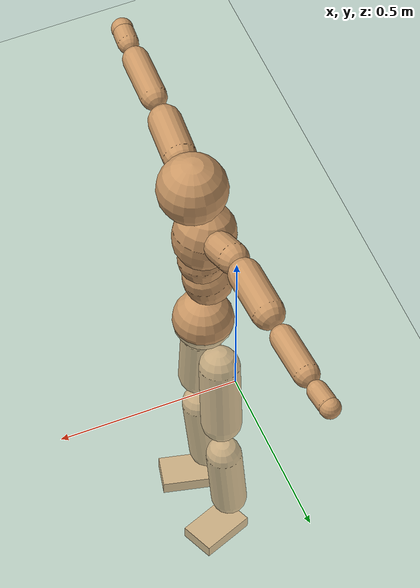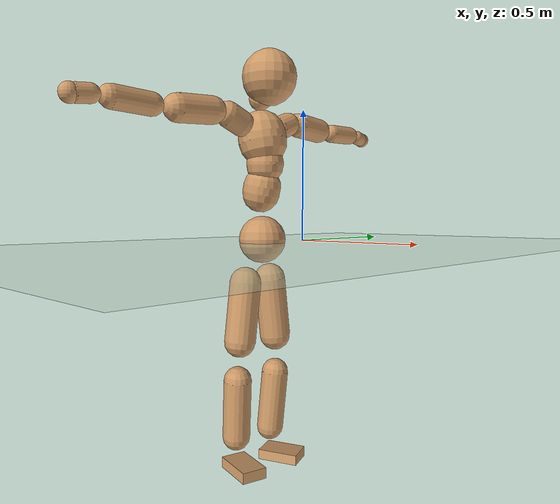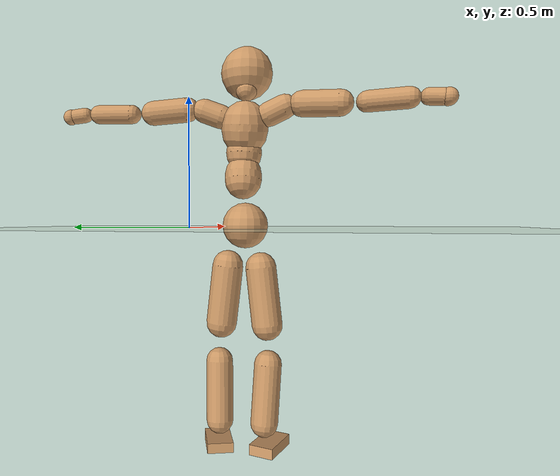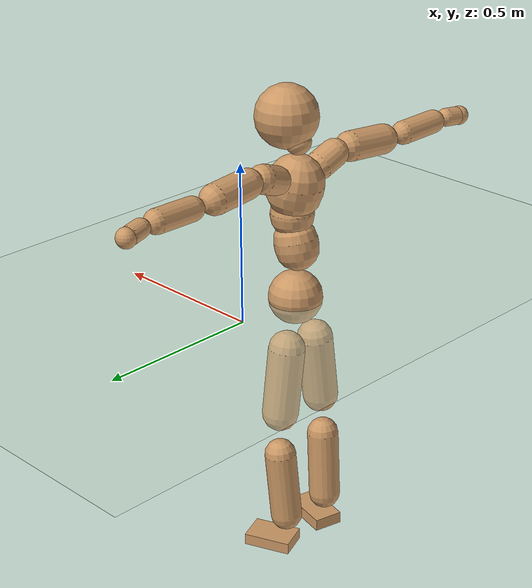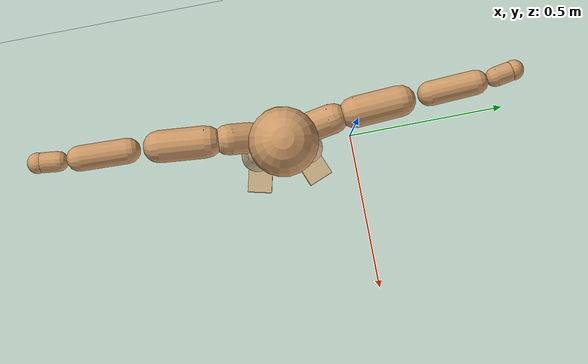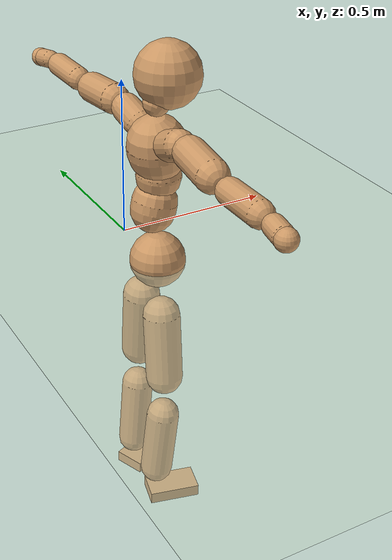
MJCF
<mujoco model="humanoid">
  <compiler coordinate="local" angle="radian"/>
  <default>
    <joint damping="0.0" armature="0.01" stiffness="0.0" limited="true"/>
    <geom conaffinity="1" condim="3" contype="7" margin="0.001" rgba="0.8 0.6 .4 1"/>
  </default>
  <asset>
    <texture type="skybox" builtin="gradient" rgb1=".4 .5 .6" rgb2="0 0 0" width="100" height="100"/>
    <texture builtin="flat" height="1278" mark="cross" markrgb="1 1 1" name="texgeom" random="0.01" rgb1="0.8 0.6 0.4" rgb2="0.8 0.6 0.4" type="cube" width="127"/>
    <texture builtin="checker" height="100" name="texplane" rgb1="0 0 0" rgb2="0.8 0.8 0.8" type="2d" width="100"/>
    <material name="MatPlane" reflectance="0.5" shininess="1" specular="1" texrepeat="60 60" texture="texplane"/>
    <material name="geom" texture="texgeom" texuniform="true"/>
  </asset>
  <worldbody>
    <light cutoff="100" diffuse="1 1 1" dir="-0 0 -1.3" directional="true" exponent="1" pos="0 0 1.3" specular=".1 .1 .1"/>
    <geom conaffinity="1" condim="3" name="floor" pos="0 0 0" rgba="0.8 0.9 0.8 1" size="100 100 .2" type="plane" material="MatPlane"/>
    <body name="Pelvis" pos="-0.0006 -0.2227 0.0106">
      <freejoint name="Pelvis"/>
      <geom type="sphere" contype="1" conaffinity="1" density="500" size="0.0851" pos="0.0000 0.0000 0.0000" name="Pelvis"/>
      <body name="L_Hip" pos="-0.0241 0.0533 -0.077">
        <joint name="L_Hip_x" type="hinge" pos="0 0 0" axis="1 0 0" stiffness="800" damping="80" armature="0.02" range="-180.0000 180.0000"/>
        <joint name="L_Hip_y" type="hinge" pos="0 0 0" axis="0 1 0" stiffness="800" damping="80" armature="0.02" range="-180.0000 180.0000"/>
        <joint name="L_Hip_z" type="hinge" pos="0 0 0" axis="0 0 1" stiffness="800" damping="80" armature="0.02" range="-180.0000 180.0000"/>
        <geom type="capsule" contype="1" conaffinity="1" density="500" fromto="0.0012 0.0085 -0.0726 0.0048 0.0341 -0.2905" size="0.0575" name="L_Hip"/>
        <body name="L_Knee" pos="0.006 0.0427 -0.3631">
          <joint name="L_Knee_x" type="hinge" pos="0 0 0" axis="1 0 0" stiffness="800" damping="80" armature="0.02" range="-180.0000 180.0000"/>
          <joint name="L_Knee_y" type="hinge" pos="0 0 0" axis="0 1 0" stiffness="800" damping="80" armature="0.02" range="-180.0000 180.0000"/>
          <joint name="L_Knee_z" type="hinge" pos="0 0 0" axis="0 0 1" stiffness="800" damping="80" armature="0.02" range="-180.0000 180.0000"/>
          <geom type="capsule" contype="1" conaffinity="1" density="500" fromto="-0.0067 -0.0022 -0.0739 -0.0269 -0.0088 -0.2958" size="0.0502" name="L_Knee"/>
          <body name="L_Ankle" pos="-0.0337 -0.011 -0.3697">
            <joint name="L_Ankle_x" type="hinge" pos="0 0 0" axis="1 0 0" stiffness="800" damping="80" armature="0.02" range="-180.0000 180.0000"/>
            <joint name="L_Ankle_y" type="hinge" pos="0 0 0" axis="0 1 0" stiffness="800" damping="80" armature="0.02" range="-180.0000 180.0000"/>
            <joint name="L_Ankle_z" type="hinge" pos="0 0 0" axis="0 0 1" stiffness="800" damping="80" armature="0.02" range="-180.0000 180.0000"/>
            <geom type="box" contype="1" conaffinity="1" density="500" pos="0.0533 0.0211 -0.0268" size="0.0761 0.049 0.0187" quat="0.9824 0.0000 0.0000 0.1869" name="L_Ankle"/>
            <body name="L_Toe" pos="0.1066 0.0421 -0.0536">
              <joint name="L_Toe_x" type="hinge" pos="0 0 0" axis="1 0 0" stiffness="500" damping="50" armature="0.02" range="-180.0000 180.0000"/>
              <joint name="L_Toe_y" type="hinge" pos="0 0 0" axis="0 1 0" stiffness="500" damping="50" armature="0.02" range="-180.0000 180.0000"/>
              <joint name="L_Toe_z" type="hinge" pos="0 0 0" axis="0 0 1" stiffness="500" damping="50" armature="0.02" range="-180.0000 180.0000"/>
              <geom type="box" contype="1" conaffinity="1" density="500" pos="0.0000 0.0000 0.0272" size="0.001 0.0023 0.001" quat="0.9815 0.0000 0.0000 0.1917" name="L_Toe"/>
            </body>
          </body>
        </body>
      </body>
      <body name="R_Hip" pos="-0.0207 -0.0561 -0.0843">
        <joint name="R_Hip_x" type="hinge" pos="0 0 0" axis="1 0 0" stiffness="800" damping="80" armature="0.02" range="-180.0000 180.0000"/>
        <joint name="R_Hip_y" type="hinge" pos="0 0 0" axis="0 1 0" stiffness="800" damping="80" armature="0.02" range="-180.0000 180.0000"/>
        <joint name="R_Hip_z" type="hinge" pos="0 0 0" axis="0 0 1" stiffness="800" damping="80" armature="0.02" range="-180.0000 180.0000"/>
        <geom type="capsule" contype="1" conaffinity="1" density="500" fromto="-0.0010 -0.0083 -0.0711 -0.0042 -0.0333 -0.2844" size="0.0569" name="R_Hip"/>
        <body name="R_Knee" pos="-0.0052 -0.0416 -0.3555">
          <joint name="R_Knee_x" type="hinge" pos="0 0 0" axis="1 0 0" stiffness="800" damping="80" armature="0.02" range="-180.0000 180.0000"/>
          <joint name="R_Knee_y" type="hinge" pos="0 0 0" axis="0 1 0" stiffness="800" damping="80" armature="0.02" range="-180.0000 180.0000"/>
          <joint name="R_Knee_z" type="hinge" pos="0 0 0" axis="0 0 1" stiffness="800" damping="80" armature="0.02" range="-180.0000 180.0000"/>
          <geom type="capsule" contype="1" conaffinity="1" density="500" fromto="-0.0063 0.0031 -0.0726 -0.0253 0.0125 -0.2904" size="0.0509" name="R_Knee"/>
          <body name="R_Ankle" pos="-0.0316 0.0156 -0.3629">
            <joint name="R_Ankle_x" type="hinge" pos="0 0 0" axis="1 0 0" stiffness="800" damping="80" armature="0.02" range="-180.0000 180.0000"/>
            <joint name="R_Ankle_y" type="hinge" pos="0 0 0" axis="0 1 0" stiffness="800" damping="80" armature="0.02" range="-180.0000 180.0000"/>
            <joint name="R_Ankle_z" type="hinge" pos="0 0 0" axis="0 0 1" stiffness="800" damping="80" armature="0.02" range="-180.0000 180.0000"/>
            <geom type="box" contype="1" conaffinity="1" density="500" pos="0.0574 -0.0139 -0.0277" size="0.0806 0.0469 0.0196" quat="0.9929 0.0000 0.0000 -0.1187" name="R_Ankle"/>
            <body name="R_Toe" pos="0.1149 -0.0279 -0.0555">
              <joint name="R_Toe_x" type="hinge" pos="0 0 0" axis="1 0 0" stiffness="500" damping="50" armature="0.02" range="-180.0000 180.0000"/>
              <joint name="R_Toe_y" type="hinge" pos="0 0 0" axis="0 1 0" stiffness="500" damping="50" armature="0.02" range="-180.0000 180.0000"/>
              <joint name="R_Toe_z" type="hinge" pos="0 0 0" axis="0 0 1" stiffness="500" damping="50" armature="0.02" range="-180.0000 180.0000"/>
              <geom type="box" contype="1" conaffinity="1" density="500" pos="0.0000 0.0000 0.0295" size="0.0009 0.0023 0.0011" quat="0.9941 0.0000 0.0000 -0.1087" name="R_Toe"/>
            </body>
          </body>
        </body>
      </body>
      <body name="Torso" pos="-0.0246 0.0038 0.113">
        <joint name="Torso_x" type="hinge" pos="0 0 0" axis="1 0 0" stiffness="1000" damping="100" armature="0.02" range="-180.0000 180.0000"/>
        <joint name="Torso_y" type="hinge" pos="0 0 0" axis="0 1 0" stiffness="1000" damping="100" armature="0.02" range="-180.0000 180.0000"/>
        <joint name="Torso_z" type="hinge" pos="0 0 0" axis="0 0 1" stiffness="1000" damping="100" armature="0.02" range="-180.0000 180.0000"/>
        <geom type="capsule" contype="1" conaffinity="1" density="500" fromto="0.0183 0.0024 0.0799 0.0122 0.0016 0.0533" size="0.0678" name="Torso"/>
        <body name="Spine" pos="0.0305 0.004 0.1331">
          <joint name="Spine_x" type="hinge" pos="0 0 0" axis="1 0 0" stiffness="1000" damping="100" armature="0.02" range="-180.0000 180.0000"/>
          <joint name="Spine_y" type="hinge" pos="0 0 0" axis="0 1 0" stiffness="1000" damping="100" armature="0.02" range="-180.0000 180.0000"/>
          <joint name="Spine_z" type="hinge" pos="0 0 0" axis="0 0 1" stiffness="1000" damping="100" armature="0.02" range="-180.0000 180.0000"/>
          <geom type="capsule" contype="1" conaffinity="1" density="500" fromto="0.0017 -0.0011 0.0317 0.0011 -0.0007 0.0211" size="0.0668" name="Spine"/>
          <body name="Chest" pos="0.0029 -0.0018 0.0529">
            <joint name="Chest_x" type="hinge" pos="0 0 0" axis="1 0 0" stiffness="1000" damping="100" armature="0.02" range="-180.0000 180.0000"/>
            <joint name="Chest_y" type="hinge" pos="0 0 0" axis="0 1 0" stiffness="1000" damping="100" armature="0.02" range="-180.0000 180.0000"/>
            <joint name="Chest_z" type="hinge" pos="0 0 0" axis="0 0 1" stiffness="1000" damping="100" armature="0.02" range="-180.0000 180.0000"/>
            <geom type="capsule" contype="1" conaffinity="1" density="500" fromto="-0.0119 -0.0051 0.0757 -0.0079 -0.0034 0.0505" size="0.0868" name="Chest"/>
            <body name="Neck" pos="-0.0239 -0.0127 0.183">
              <joint name="Neck_x" type="hinge" pos="0 0 0" axis="1 0 0" stiffness="500" damping="50" armature="0.02" range="-180.0000 180.0000"/>
              <joint name="Neck_y" type="hinge" pos="0 0 0" axis="0 1 0" stiffness="500" damping="50" armature="0.02" range="-180.0000 180.0000"/>
              <joint name="Neck_z" type="hinge" pos="0 0 0" axis="0 0 1" stiffness="500" damping="50" armature="0.02" range="-180.0000 180.0000"/>
              <geom type="capsule" contype="1" conaffinity="1" density="500" fromto="0.0097 0.0018 0.0175 0.0389 0.0072 0.0702" size="0.0404" name="Neck"/>
              <body name="Head" pos="0.0487 0.0091 0.0877">
                <joint name="Head_x" type="hinge" pos="0 0 0" axis="1 0 0" stiffness="500" damping="50" armature="0.02" range="-180.0000 180.0000"/>
                <joint name="Head_y" type="hinge" pos="0 0 0" axis="0 1 0" stiffness="500" damping="50" armature="0.02" range="-180.0000 180.0000"/>
                <joint name="Head_z" type="hinge" pos="0 0 0" axis="0 0 1" stiffness="500" damping="50" armature="0.02" range="-180.0000 180.0000"/>
                <geom type="sphere" contype="1" conaffinity="1" density="500" size="0.0971" pos="0.0000 0.0000 0.0000" name="Head"/>
              </body>
            </body>
            <body name="L_Thorax" pos="-0.0156 0.0623 0.0979">
              <joint name="L_Thorax_x" type="hinge" pos="0 0 0" axis="1 0 0" stiffness="500" damping="50" armature="0.02" range="-180.0000 180.0000"/>
              <joint name="L_Thorax_y" type="hinge" pos="0 0 0" axis="0 1 0" stiffness="500" damping="50" armature="0.02" range="-180.0000 180.0000"/>
              <joint name="L_Thorax_z" type="hinge" pos="0 0 0" axis="0 0 1" stiffness="500" damping="50" armature="0.02" range="-180.0000 180.0000"/>
              <geom type="capsule" contype="1" conaffinity="1" density="500" fromto="-0.0029 0.0215 0.0081 -0.0116 0.0859 0.0325" size="0.0441" name="L_Thorax"/>
              <body name="L_Shoulder" pos="-0.0145 0.1074 0.0406">
                <joint name="L_Shoulder_x" type="hinge" pos="0 0 0" axis="1 0 0" stiffness="500" damping="50" armature="0.02" range="-720.0000 720.0000"/>
                <joint name="L_Shoulder_y" type="hinge" pos="0 0 0" axis="0 1 0" stiffness="500" damping="50" armature="0.02" range="-720.0000 720.0000"/>
                <joint name="L_Shoulder_z" type="hinge" pos="0 0 0" axis="0 0 1" stiffness="500" damping="50" armature="0.02" range="-720.0000 720.0000"/>
                <geom type="capsule" contype="1" conaffinity="1" density="500" fromto="-0.0026 0.0444 -0.0024 -0.0105 0.1775 -0.0095" size="0.046" name="L_Shoulder"/>
                <body name="L_Elbow" pos="-0.0131 0.2218 -0.0119">
                  <joint name="L_Elbow_x" type="hinge" pos="0 0 0" axis="1 0 0" stiffness="500" damping="50" armature="0.02" range="-720.0000 720.0000"/>
                  <joint name="L_Elbow_y" type="hinge" pos="0 0 0" axis="0 1 0" stiffness="500" damping="50" armature="0.02" range="-720.0000 720.0000"/>
                  <joint name="L_Elbow_z" type="hinge" pos="0 0 0" axis="0 0 1" stiffness="500" damping="50" armature="0.02" range="-720.0000 720.0000"/>
                  <geom type="capsule" contype="1" conaffinity="1" density="500" fromto="-0.0021 0.0446 0.0015 -0.0085 0.1784 0.0062" size="0.0362" name="L_Elbow"/>
                  <body name="L_Wrist" pos="-0.0107 0.223 0.0077">
                    <joint name="L_Wrist_x" type="hinge" pos="0 0 0" axis="1 0 0" stiffness="300" damping="30" armature="0.02" range="-180.0000 180.0000"/>
                    <joint name="L_Wrist_y" type="hinge" pos="0 0 0" axis="0 1 0" stiffness="300" damping="30" armature="0.02" range="-180.0000 180.0000"/>
                    <joint name="L_Wrist_z" type="hinge" pos="0 0 0" axis="0 0 1" stiffness="300" damping="30" armature="0.02" range="-180.0000 180.0000"/>
                    <geom type="capsule" contype="1" conaffinity="1" density="500" fromto="-0.0026 0.0143 -0.0018 -0.0102 0.0573 -0.0072" size="0.0285" name="L_Wrist"/>
                    <body name="L_Hand" pos="-0.0128 0.0716 -0.009">
                      <joint name="L_Hand_x" type="hinge" pos="0 0 0" axis="1 0 0" stiffness="300" damping="30" armature="0.02" range="-180.0000 180.0000"/>
                      <joint name="L_Hand_y" type="hinge" pos="0 0 0" axis="0 1 0" stiffness="300" damping="30" armature="0.02" range="-180.0000 180.0000"/>
                      <joint name="L_Hand_z" type="hinge" pos="0 0 0" axis="0 0 1" stiffness="300" damping="30" armature="0.02" range="-180.0000 180.0000"/>
                      <geom type="sphere" contype="1" conaffinity="1" density="500" size="0.0296" pos="0.0000 0.0000 0.0000" name="L_Hand"/>
                    </body>
                  </body>
                </body>
              </body>
            </body>
            <body name="R_Thorax" pos="-0.0197 -0.075 0.0978">
              <joint name="R_Thorax_x" type="hinge" pos="0 0 0" axis="1 0 0" stiffness="500" damping="50" armature="0.02" range="-180.0000 180.0000"/>
              <joint name="R_Thorax_y" type="hinge" pos="0 0 0" axis="0 1 0" stiffness="500" damping="50" armature="0.02" range="-180.0000 180.0000"/>
              <joint name="R_Thorax_z" type="hinge" pos="0 0 0" axis="0 0 1" stiffness="500" damping="50" armature="0.02" range="-180.0000 180.0000"/>
              <geom type="capsule" contype="1" conaffinity="1" density="500" fromto="-0.0011 -0.0200 0.0083 -0.0046 -0.0801 0.0330" size="0.0449" name="R_Thorax"/>
              <body name="R_Shoulder" pos="-0.0057 -0.1002 0.0413">
                <joint name="R_Shoulder_x" type="hinge" pos="0 0 0" axis="1 0 0" stiffness="500" damping="50" armature="0.02" range="-720.0000 720.0000"/>
                <joint name="R_Shoulder_y" type="hinge" pos="0 0 0" axis="0 1 0" stiffness="500" damping="50" armature="0.02" range="-720.0000 720.0000"/>
                <joint name="R_Shoulder_z" type="hinge" pos="0 0 0" axis="0 0 1" stiffness="500" damping="50" armature="0.02" range="-720.0000 720.0000"/>
                <geom type="capsule" contype="1" conaffinity="1" density="500" fromto="-0.0043 -0.0446 -0.0025 -0.0171 -0.1786 -0.0100" size="0.0472" name="R_Shoulder"/>
                <body name="R_Elbow" pos="-0.0213 -0.2232 -0.0125">
                  <joint name="R_Elbow_x" type="hinge" pos="0 0 0" axis="1 0 0" stiffness="500" damping="50" armature="0.02" range="-720.0000 720.0000"/>
                  <joint name="R_Elbow_y" type="hinge" pos="0 0 0" axis="0 1 0" stiffness="500" damping="50" armature="0.02" range="-720.0000 720.0000"/>
                  <joint name="R_Elbow_z" type="hinge" pos="0 0 0" axis="0 0 1" stiffness="500" damping="50" armature="0.02" range="-720.0000 720.0000"/>
                  <geom type="capsule" contype="1" conaffinity="1" density="500" fromto="-0.0014 -0.0463 0.0013 -0.0057 -0.1852 0.0052" size="0.0373" name="R_Elbow"/>
                  <body name="R_Wrist" pos="-0.0071 -0.2315 0.0065">
                    <joint name="R_Wrist_x" type="hinge" pos="0 0 0" axis="1 0 0" stiffness="300" damping="30" armature="0.02" range="-180.0000 180.0000"/>
                    <joint name="R_Wrist_y" type="hinge" pos="0 0 0" axis="0 1 0" stiffness="300" damping="30" armature="0.02" range="-180.0000 180.0000"/>
                    <joint name="R_Wrist_z" type="hinge" pos="0 0 0" axis="0 0 1" stiffness="300" damping="30" armature="0.02" range="-180.0000 180.0000"/>
                    <geom type="capsule" contype="1" conaffinity="1" density="500" fromto="-0.0017 -0.0149 -0.0014 -0.0068 -0.0598 -0.0057" size="0.0295" name="R_Wrist"/>
                    <body name="R_Hand" pos="-0.0085 -0.0747 -0.0071">
                      <joint name="R_Hand_x" type="hinge" pos="0 0 0" axis="1 0 0" stiffness="300" damping="30" armature="0.02" range="-180.0000 180.0000"/>
                      <joint name="R_Hand_y" type="hinge" pos="0 0 0" axis="0 1 0" stiffness="300" damping="30" armature="0.02" range="-180.0000 180.0000"/>
                      <joint name="R_Hand_z" type="hinge" pos="0 0 0" axis="0 0 1" stiffness="300" damping="30" armature="0.02" range="-180.0000 180.0000"/>
                      <geom type="sphere" contype="1" conaffinity="1" density="500" size="0.0305" pos="0.0000 0.0000 0.0000" name="R_Hand"/>
                    </body>
                  </body>
                </body>
              </body>
            </body>
          </body>
        </body>
      </body>
    </body>
  </worldbody>
  <actuator>
    <motor name="L_Hip_x" joint="L_Hip_x" gear="500"/>
    <motor name="L_Hip_y" joint="L_Hip_y" gear="500"/>
    <motor name="L_Hip_z" joint="L_Hip_z" gear="500"/>
    <motor name="L_Knee_x" joint="L_Knee_x" gear="500"/>
    <motor name="L_Knee_y" joint="L_Knee_y" gear="500"/>
    <motor name="L_Knee_z" joint="L_Knee_z" gear="500"/>
    <motor name="L_Ankle_x" joint="L_Ankle_x" gear="500"/>
    <motor name="L_Ankle_y" joint="L_Ankle_y" gear="500"/>
    <motor name="L_Ankle_z" joint="L_Ankle_z" gear="500"/>
    <motor name="L_Toe_x" joint="L_Toe_x" gear="500"/>
    <motor name="L_Toe_y" joint="L_Toe_y" gear="500"/>
    <motor name="L_Toe_z" joint="L_Toe_z" gear="500"/>
    <motor name="R_Hip_x" joint="R_Hip_x" gear="500"/>
    <motor name="R_Hip_y" joint="R_Hip_y" gear="500"/>
    <motor name="R_Hip_z" joint="R_Hip_z" gear="500"/>
    <motor name="R_Knee_x" joint="R_Knee_x" gear="500"/>
    <motor name="R_Knee_y" joint="R_Knee_y" gear="500"/>
    <motor name="R_Knee_z" joint="R_Knee_z" gear="500"/>
    <motor name="R_Ankle_x" joint="R_Ankle_x" gear="500"/>
    <motor name="R_Ankle_y" joint="R_Ankle_y" gear="500"/>
    <motor name="R_Ankle_z" joint="R_Ankle_z" gear="500"/>
    <motor name="R_Toe_x" joint="R_Toe_x" gear="500"/>
    <motor name="R_Toe_y" joint="R_Toe_y" gear="500"/>
    <motor name="R_Toe_z" joint="R_Toe_z" gear="500"/>
    <motor name="Torso_x" joint="Torso_x" gear="500"/>
    <motor name="Torso_y" joint="Torso_y" gear="500"/>
    <motor name="Torso_z" joint="Torso_z" gear="500"/>
    <motor name="Spine_x" joint="Spine_x" gear="500"/>
    <motor name="Spine_y" joint="Spine_y" gear="500"/>
    <motor name="Spine_z" joint="Spine_z" gear="500"/>
    <motor name="Chest_x" joint="Chest_x" gear="500"/>
    <motor name="Chest_y" joint="Chest_y" gear="500"/>
    <motor name="Chest_z" joint="Chest_z" gear="500"/>
    <motor name="Neck_x" joint="Neck_x" gear="500"/>
    <motor name="Neck_y" joint="Neck_y" gear="500"/>
    <motor name="Neck_z" joint="Neck_z" gear="500"/>
    <motor name="Head_x" joint="Head_x" gear="500"/>
    <motor name="Head_y" joint="Head_y" gear="500"/>
    <motor name="Head_z" joint="Head_z" gear="500"/>
    <motor name="L_Thorax_x" joint="L_Thorax_x" gear="500"/>
    <motor name="L_Thorax_y" joint="L_Thorax_y" gear="500"/>
    <motor name="L_Thorax_z" joint="L_Thorax_z" gear="500"/>
    <motor name="L_Shoulder_x" joint="L_Shoulder_x" gear="500"/>
    <motor name="L_Shoulder_y" joint="L_Shoulder_y" gear="500"/>
    <motor name="L_Shoulder_z" joint="L_Shoulder_z" gear="500"/>
    <motor name="L_Elbow_x" joint="L_Elbow_x" gear="500"/>
    <motor name="L_Elbow_y" joint="L_Elbow_y" gear="500"/>
    <motor name="L_Elbow_z" joint="L_Elbow_z" gear="500"/>
    <motor name="L_Wrist_x" joint="L_Wrist_x" gear="500"/>
    <motor name="L_Wrist_y" joint="L_Wrist_y" gear="500"/>
    <motor name="L_Wrist_z" joint="L_Wrist_z" gear="500"/>
    <motor name="L_Hand_x" joint="L_Hand_x" gear="500"/>
    <motor name="L_Hand_y" joint="L_Hand_y" gear="500"/>
    <motor name="L_Hand_z" joint="L_Hand_z" gear="500"/>
    <motor name="R_Thorax_x" joint="R_Thorax_x" gear="500"/>
    <motor name="R_Thorax_y" joint="R_Thorax_y" gear="500"/>
    <motor name="R_Thorax_z" joint="R_Thorax_z" gear="500"/>
    <motor name="R_Shoulder_x" joint="R_Shoulder_x" gear="500"/>
    <motor name="R_Shoulder_y" joint="R_Shoulder_y" gear="500"/>
    <motor name="R_Shoulder_z" joint="R_Shoulder_z" gear="500"/>
    <motor name="R_Elbow_x" joint="R_Elbow_x" gear="500"/>
    <motor name="R_Elbow_y" joint="R_Elbow_y" gear="500"/>
    <motor name="R_Elbow_z" joint="R_Elbow_z" gear="500"/>
    <motor name="R_Wrist_x" joint="R_Wrist_x" gear="500"/>
    <motor name="R_Wrist_y" joint="R_Wrist_y" gear="500"/>
    <motor name="R_Wrist_z" joint="R_Wrist_z" gear="500"/>
    <motor name="R_Hand_x" joint="R_Hand_x" gear="500"/>
    <motor name="R_Hand_y" joint="R_Hand_y" gear="500"/>
    <motor name="R_Hand_z" joint="R_Hand_z" gear="500"/>
  </actuator>
  <contact>
    <exclude body1="Torso" body2="Chest"/>
    <exclude body1="Head" body2="Chest"/>
    <exclude body1="R_Knee" body2="R_Toe"/>
    <exclude body1="R_Knee" body2="L_Ankle"/>
    <exclude body1="R_Knee" body2="L_Toe"/>
    <exclude body1="L_Knee" body2="L_Toe"/>
    <exclude body1="L_Knee" body2="R_Ankle"/>
    <exclude body1="L_Knee" body2="R_Toe"/>
    <exclude body1="L_Shoulder" body2="Chest"/>
    <exclude body1="R_Shoulder" body2="Chest"/>
  </contact>
  <sensor/>
  <size njmax="700" nconmax="700"/>
</mujoco>
